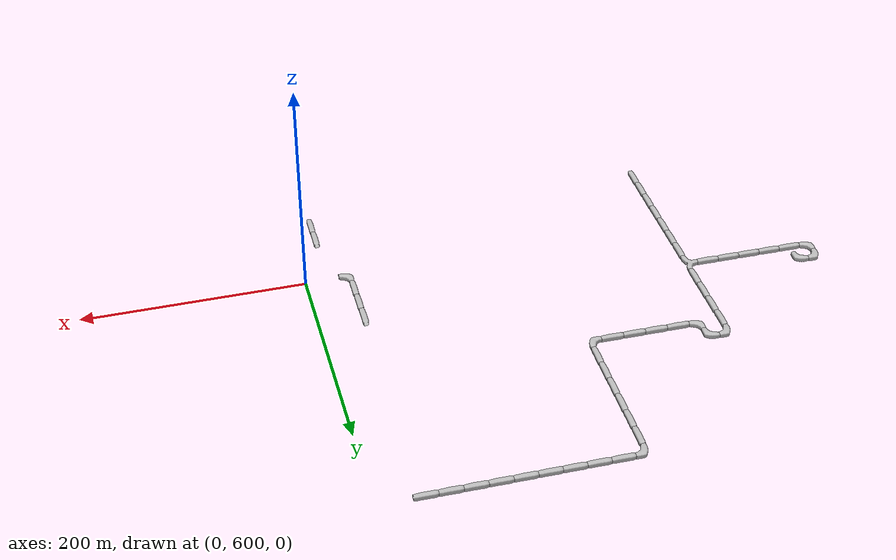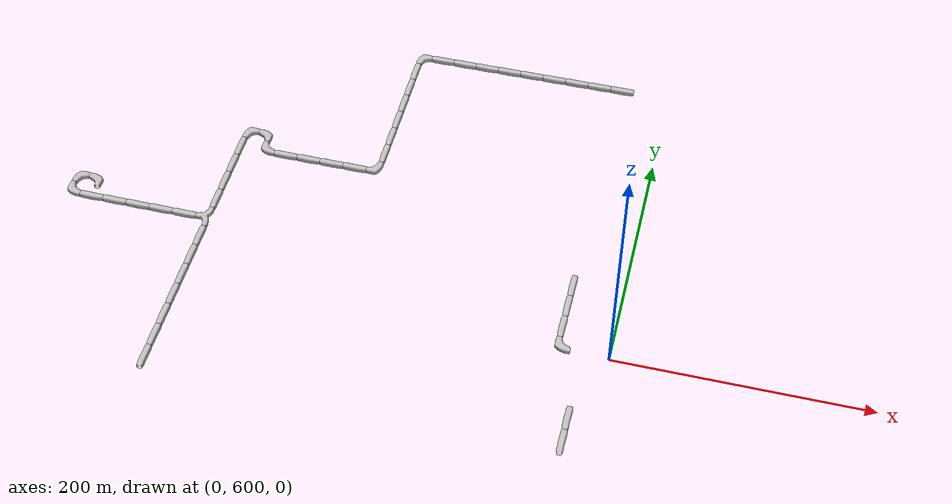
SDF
<sdf version="1.6">
 <world name="cave_16000_16">
  <include>
   <static>true</static>
   <name>cave_-1_27</name>
   <pose>-20 540 0 0 0 0.0</pose>
   <uri>model://cave_straight_20m</uri>
  </include>
  <include>
   <static>true</static>
   <name>cave_-1_26</name>
   <pose>-20 520 0 0 0 0.0</pose>
   <uri>model://cave_straight_20m</uri>
  </include>
  <include>
   <static>true</static>
   <name>cave_-17_26</name>
   <pose>-340 520 0 0 0 0.0</pose>
   <uri>model://cave_straight_20m</uri>
  </include>
  <include>
   <static>true</static>
   <name>cave_-17_27</name>
   <pose>-340 540 0 0 0 0.0</pose>
   <uri>model://cave_straight_20m</uri>
  </include>
  <include>
   <static>true</static>
   <name>cave_-17_28</name>
   <pose>-340 560 0 0 0 0.0</pose>
   <uri>model://cave_straight_20m</uri>
  </include>
  <include>
   <static>true</static>
   <name>cave_-17_29</name>
   <pose>-340 580 0 0 0 0.0</pose>
   <uri>model://cave_straight_20m</uri>
  </include>
  <include>
   <static>true</static>
   <name>cave_-17_30</name>
   <pose>-340 600 0 0 0 0.0</pose>
   <uri>model://cave_straight_20m</uri>
  </include>
  <include>
   <static>true</static>
   <name>cave_-17_31</name>
   <pose>-340 620 0 0 0 0.0</pose>
   <uri>model://cave_straight_20m</uri>
  </include>
  <include>
   <static>true</static>
   <name>cave_-17_32</name>
   <pose>-340 640 0 0 0 0.0</pose>
   <uri>model://cave_straight_20m</uri>
  </include>
  <include>
   <static>true</static>
   <name>cave_-17_33</name>
   <pose>-340 660 0 0 0 1.5707963267948966</pose>
   <uri>model://cave_3way_20m</uri>
  </include>
  <include>
   <static>true</static>
   <name>cave_-18_33</name>
   <pose>-360 660 0 0 0 1.5707963267948966</pose>
   <uri>model://cave_straight_20m</uri>
  </include>
  <include>
   <static>true</static>
   <name>cave_-19_33</name>
   <pose>-380 660 0 0 0 1.5707963267948966</pose>
   <uri>model://cave_straight_20m</uri>
  </include>
  <include>
   <static>true</static>
   <name>cave_-20_33</name>
   <pose>-400 660 0 0 0 1.5707963267948966</pose>
   <uri>model://cave_straight_20m</uri>
  </include>
  <include>
   <static>true</static>
   <name>cave_-21_33</name>
   <pose>-420 660 0 0 0 1.5707963267948966</pose>
   <uri>model://cave_straight_20m</uri>
  </include>
  <include>
   <static>true</static>
   <name>cave_-22_33</name>
   <pose>-440 660 0 0 0 1.5707963267948966</pose>
   <uri>model://cave_straight_20m</uri>
  </include>
  <include>
   <static>true</static>
   <name>cave_-23_33</name>
   <pose>-460 660 0 0 0 0.0</pose>
   <uri>model://cave_L_20m</uri>
  </include>
  <include>
   <static>true</static>
   <name>cave_-23_34</name>
   <pose>-460 680 0 0 0 -1.5707963267948966</pose>
   <uri>model://cave_L_20m</uri>
  </include>
  <include>
   <static>true</static>
   <name>cave_-22_34</name>
   <pose>-440 680 0 0 0 3.141592653589793</pose>
   <uri>model://cave_L_20m</uri>
  </include>
  <include>
   <static>true</static>
   <name>cave_-17_34</name>
   <pose>-340 680 0 0 0 0.0</pose>
   <uri>model://cave_straight_20m</uri>
  </include>
  <include>
   <static>true</static>
   <name>cave_-17_35</name>
   <pose>-340 700 0 0 0 0.0</pose>
   <uri>model://cave_straight_20m</uri>
  </include>
  <include>
   <static>true</static>
   <name>cave_-17_36</name>
   <pose>-340 720 0 0 0 0.0</pose>
   <uri>model://cave_straight_20m</uri>
  </include>
  <include>
   <static>true</static>
   <name>cave_-17_37</name>
   <pose>-340 740 0 0 0 0.0</pose>
   <uri>model://cave_straight_20m</uri>
  </include>
  <include>
   <static>true</static>
   <name>cave_-17_38</name>
   <pose>-340 760 0 0 0 -1.5707963267948966</pose>
   <uri>model://cave_L_20m</uri>
  </include>
  <include>
   <static>true</static>
   <name>cave_-16_38</name>
   <pose>-320 760 0 0 0 3.141592653589793</pose>
   <uri>model://cave_L_20m</uri>
  </include>
  <include>
   <static>true</static>
   <name>cave_-16_37</name>
   <pose>-320 740 0 0 0 0.0</pose>
   <uri>model://cave_L_20m</uri>
  </include>
  <include>
   <static>true</static>
   <name>cave_-15_37</name>
   <pose>-300 740 0 0 0 1.5707963267948966</pose>
   <uri>model://cave_straight_20m</uri>
  </include>
  <include>
   <static>true</static>
   <name>cave_-14_37</name>
   <pose>-280 740 0 0 0 1.5707963267948966</pose>
   <uri>model://cave_straight_20m</uri>
  </include>
  <include>
   <static>true</static>
   <name>cave_-13_37</name>
   <pose>-260 740 0 0 0 1.5707963267948966</pose>
   <uri>model://cave_straight_20m</uri>
  </include>
  <include>
   <static>true</static>
   <name>cave_-12_37</name>
   <pose>-240 740 0 0 0 1.5707963267948966</pose>
   <uri>model://cave_straight_20m</uri>
  </include>
  <include>
   <static>true</static>
   <name>cave_-11_37</name>
   <pose>-220 740 0 0 0 1.5707963267948966</pose>
   <uri>model://cave_L_20m</uri>
  </include>
  <include>
   <static>true</static>
   <name>cave_-11_38</name>
   <pose>-220 760 0 0 0 0.0</pose>
   <uri>model://cave_straight_20m</uri>
  </include>
  <include>
   <static>true</static>
   <name>cave_-11_39</name>
   <pose>-220 780 0 0 0 0.0</pose>
   <uri>model://cave_straight_20m</uri>
  </include>
  <include>
   <static>true</static>
   <name>cave_-11_40</name>
   <pose>-220 800 0 0 0 0.0</pose>
   <uri>model://cave_straight_20m</uri>
  </include>
  <include>
   <static>true</static>
   <name>cave_-11_41</name>
   <pose>-220 820 0 0 0 0.0</pose>
   <uri>model://cave_straight_20m</uri>
  </include>
  <include>
   <static>true</static>
   <name>cave_-11_42</name>
   <pose>-220 840 0 0 0 0.0</pose>
   <uri>model://cave_straight_20m</uri>
  </include>
  <include>
   <static>true</static>
   <name>cave_-11_43</name>
   <pose>-220 860 0 0 0 0.0</pose>
   <uri>model://cave_straight_20m</uri>
  </include>
  <include>
   <static>true</static>
   <name>cave_-11_44</name>
   <pose>-220 880 0 0 0 -1.5707963267948966</pose>
   <uri>model://cave_L_20m</uri>
  </include>
  <include>
   <static>true</static>
   <name>cave_-10_44</name>
   <pose>-200 880 0 0 0 1.5707963267948966</pose>
   <uri>model://cave_straight_20m</uri>
  </include>
  <include>
   <static>true</static>
   <name>cave_-9_44</name>
   <pose>-180 880 0 0 0 1.5707963267948966</pose>
   <uri>model://cave_straight_20m</uri>
  </include>
  <include>
   <static>true</static>
   <name>cave_-8_44</name>
   <pose>-160 880 0 0 0 1.5707963267948966</pose>
   <uri>model://cave_straight_20m</uri>
  </include>
  <include>
   <static>true</static>
   <name>cave_-7_44</name>
   <pose>-140 880 0 0 0 1.5707963267948966</pose>
   <uri>model://cave_straight_20m</uri>
  </include>
  <include>
   <static>true</static>
   <name>cave_-6_44</name>
   <pose>-120 880 0 0 0 1.5707963267948966</pose>
   <uri>model://cave_straight_20m</uri>
  </include>
  <include>
   <static>true</static>
   <name>cave_-5_44</name>
   <pose>-100 880 0 0 0 1.5707963267948966</pose>
   <uri>model://cave_straight_20m</uri>
  </include>
  <include>
   <static>true</static>
   <name>cave_-4_44</name>
   <pose>-80 880 0 0 0 1.5707963267948966</pose>
   <uri>model://cave_straight_20m</uri>
  </include>
  <include>
   <static>true</static>
   <name>cave_-3_44</name>
   <pose>-60 880 0 0 0 1.5707963267948966</pose>
   <uri>model://cave_straight_20m</uri>
  </include>
  <include>
   <static>true</static>
   <name>cave_-2_44</name>
   <pose>-40 880 0 0 0 1.5707963267948966</pose>
   <uri>model://cave_straight_20m</uri>
  </include>
  <include>
   <static>true</static>
   <name>cave_-2_30</name>
   <pose>-40 600 0 0 0 0.0</pose>
   <uri>model://cave_L_20m</uri>
  </include>
  <include>
   <static>true</static>
   <name>cave_-2_31</name>
   <pose>-40 620 0 0 0 0.0</pose>
   <uri>model://cave_straight_20m</uri>
  </include>
  <include>
   <static>true</static>
   <name>cave_-2_32</name>
   <pose>-40 640 0 0 0 0.0</pose>
   <uri>model://cave_straight_20m</uri>
  </include>
  <include>
   <static>true</static>
   <name>cave_-2_33</name>
   <pose>-40 660 0 0 0 0.0</pose>
   <uri>model://cave_straight_20m</uri>
  </include>
 </world>
</sdf>
